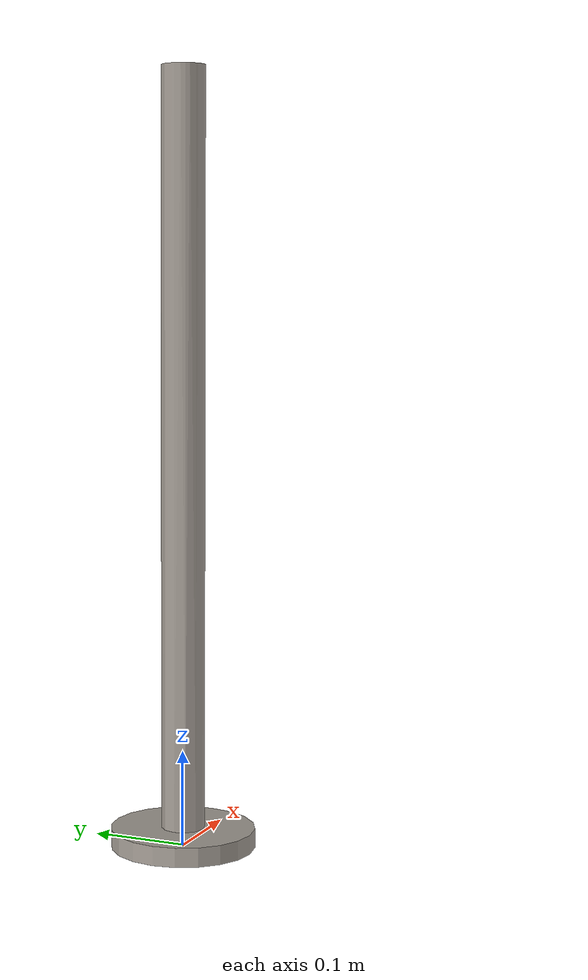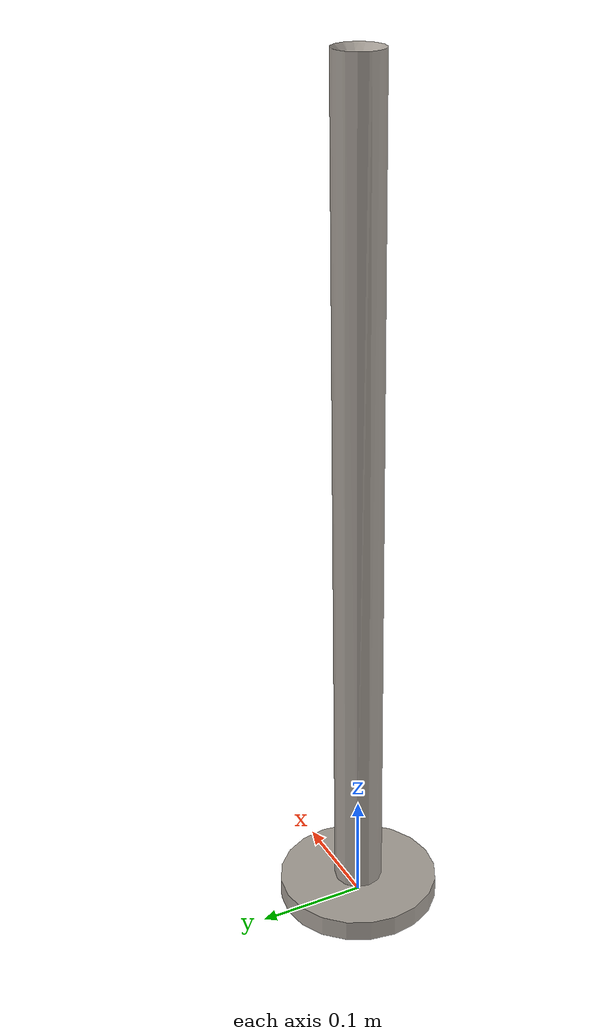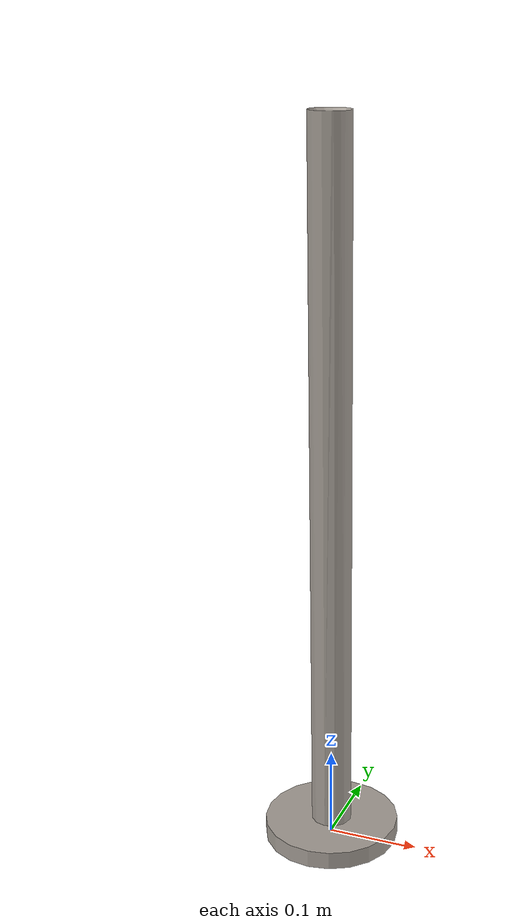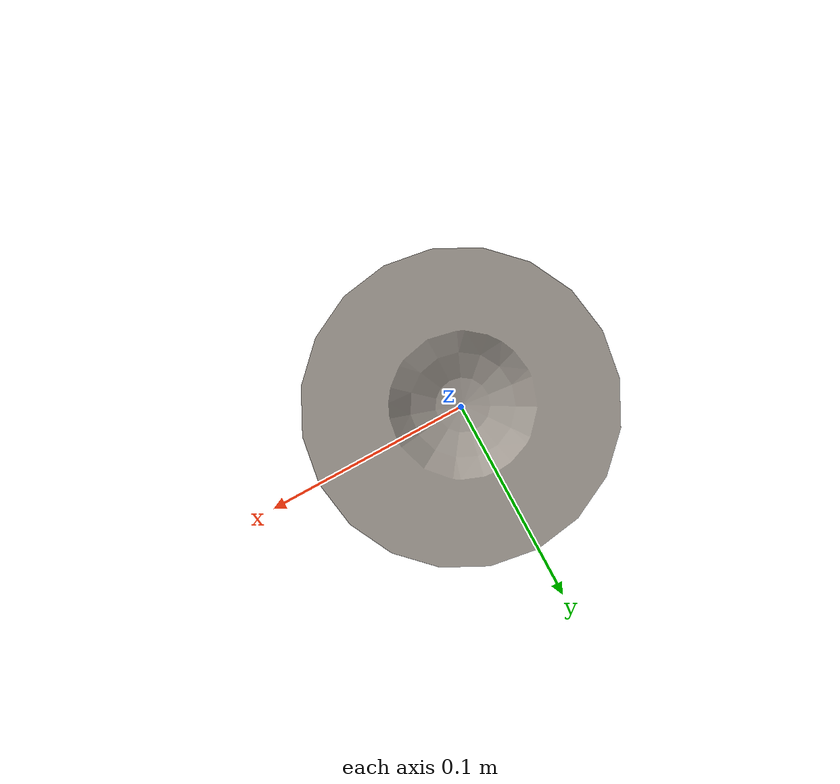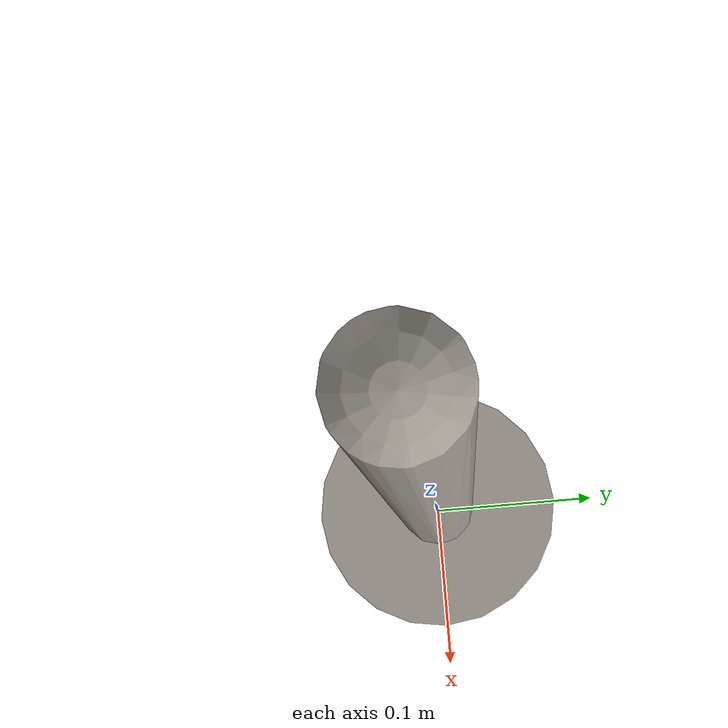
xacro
<?xml version="1.0" encoding="utf-8"?>

<robot name="task4_no_pinger" xmlns:xacro="http://www.ros.org/wiki/xacro">

  <link name="base_link">
    <inertial>
      <origin
        xyz="0 0 0.31877"
        rpy="0 0 0" />
      <mass
        value="12.525" />
      <inertia
        ixx="0.8346"
        ixy="0"
        ixz="0"
        iyy="0.01322"
        iyz="0"
        izz="0.3" />
    </inertial>
    <visual>
      <origin
        xyz="0 0 0"
        rpy="0 0 0" />
      <geometry>
        <mesh
          filename="package://uwv_env/meshes/sauvc_pool/task4_base.STL" />
      </geometry>
      <material
        name="">
        <color
          rgba="0.64706 0.61961 0.58824 1" />
      </material>
    </visual>
    <collision>
      <origin
        xyz="0 0 0"
        rpy="0 0 0" />
      <geometry>
        <mesh
          filename="package://uwv_env/meshes/sauvc_pool/task4_base.STL" />
      </geometry>
    </collision>
  </link>

  <gazebo reference="base_link">
		<material>
			Gazebo/Yellow
		</material>
  </gazebo>

</robot>
